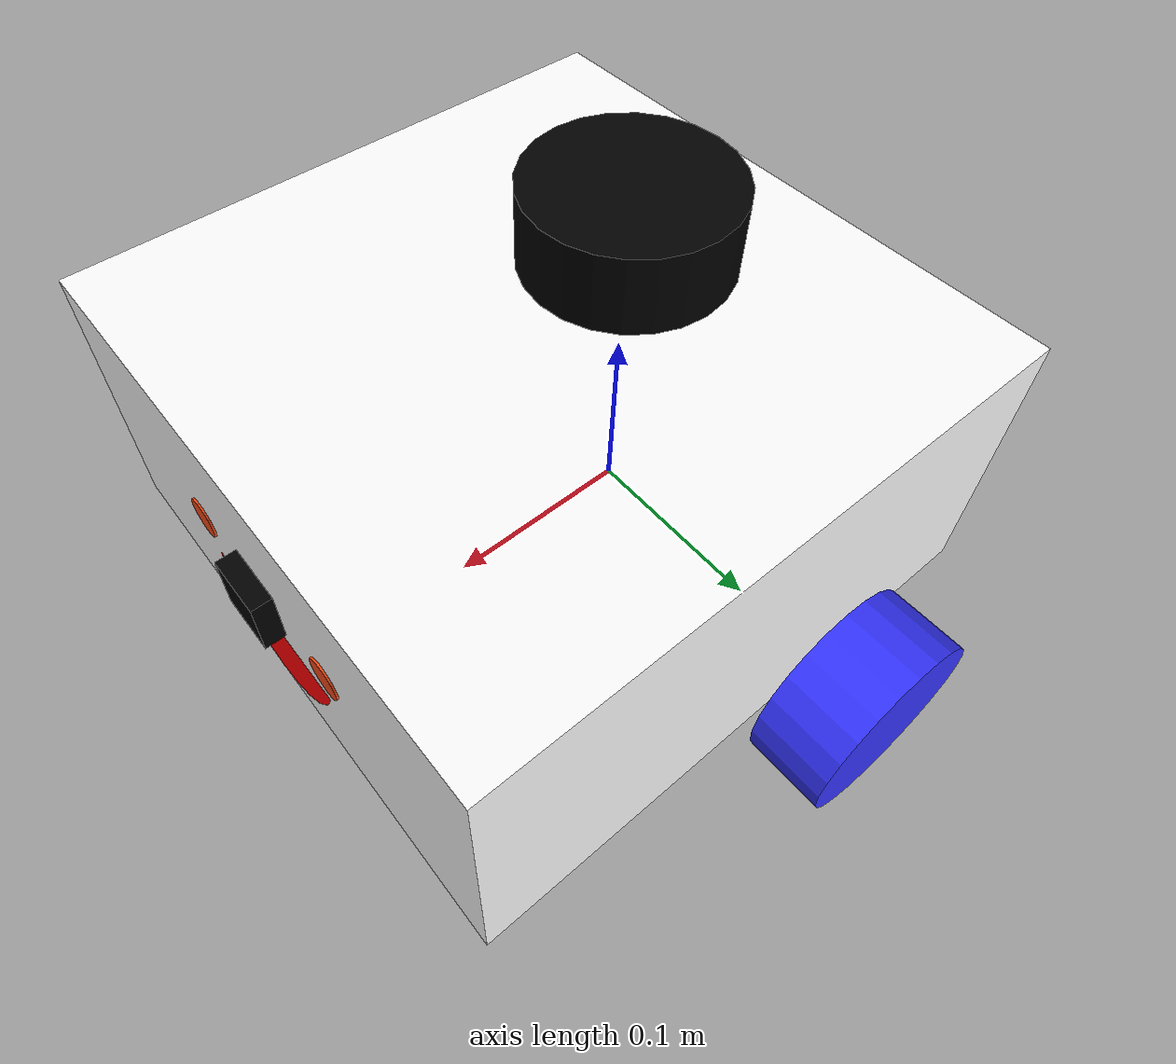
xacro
<?xml version="1.0"?>
<robot xmlns:xacro="http://www.ros.org/wiki/xacro"  name="robot">

    <xacro:arg name="use_ros2_control" default="true"/>

    <xacro:include filename="robot_core.xacro" />

    <xacro:if value="$(arg use_ros2_control)">
        <xacro:include filename="ros2_control.xacro" />
    </xacro:if>
    <xacro:unless value="$(arg use_ros2_control)">
        <xacro:include filename="gazebo_control.xacro" />
    </xacro:unless>
    <xacro:include filename="lidar.xacro" />
    <xacro:include filename="camera.xacro" />

    <xacro:include filename="face.xacro" />

</robot>

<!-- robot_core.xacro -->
<robot xmlns:xacro="http://www.ros.org/wiki/xacro">

    <xacro:include filename="inertial_macros.xacro"/>

    <material name="white">
        <color rgba="1 1 1 1" />
    </material>

    <material name="orange">
        <color rgba="1 0.3 0.1 1"/>
    </material>

    <material name="blue">
        <color rgba="0.2 0.2 1 1"/>
    </material>

    <material name="black">
        <color rgba="0 0 0 1"/>
    </material>

    <material name="red">
        <color rgba="1 0 0 1"/>
    </material>

    <!-- BASE LINK -->

    <link name="base_link">

    </link>

    <!-- toa do start -->
    <link name="base_footprint">
    </link>

    <joint name="base_footprint_joint" type="fixed">
        <parent link="base_link"/>
        <child link="base_footprint"/>
        <origin xyz="0 0 0" rpy="0 0 0"/>

    </joint>

    <!-- khung xe-->
    <link name="chassis">
        <visual>
            <origin xyz="0.15 0 0.075"/>
            <geometry>
                <box size="0.3 0.3 0.15"/>
            </geometry>
            <material name="white"/>
        </visual>

        <collision>
            <origin xyz="0.15 0 0.075"/>
            <geometry>
                <box size="0.3 0.3 0.15"/>
            </geometry>
            <material name="white"/>
        </collision>

        <xacro:inertial_box mass="0.5" x="0.3" y="0.3" z="0.15">
            <origin xyz="0.15 0 0.075" rpy="0.0 0.0 0.0"/>
        </xacro:inertial_box>
    </link>

    <joint name="chassis_joint" type="fixed">
        <parent link="base_link"/>
        <child link="chassis"/>
        <origin xyz="-0.1 0 0"/>
    </joint>

    <!-- gazebo chassis -->
    <gazebo reference="chassis">
        <material>Gazebo/white</material>
    </gazebo>

    <!-- banh xe trai-->
    <link name="left_wheel">
        <visual>
            <geometry>
                <cylinder radius="0.05" length="0.04"/>
            </geometry>
            <material name="blue"/>
        </visual>

        <collision>
            <geometry>
                <sphere radius="0.05" length="0.04"/>
            </geometry>
            <material name="blue"/>
        </collision>

        <xacro:inertial_cylinder mass="0.1" length="0.04" radius="0.05">
            <origin xyz="0.0 0.0 0.0" rpy="0.0 0.0 0.0" />
        </xacro:inertial_cylinder>

    </link>

    <joint name="left_wheel_joint" type="continuous">
        <parent link="base_link"/>
        <child link="left_wheel"/>
        <origin xyz="0 0.175 0" rpy="-${pi/2} 0 0 "/>
        <axis xyz="0.0 0.0 1.0"/>
    </joint>

    <!-- Gazebo banh xe trai -->
    <gazebo reference="left_wheel">
        <material>
            Gazebo/Blue
        </material>
    </gazebo>

    <!-- banh xe phai -->
    <link name="right_wheel">
        <visual>
            <geometry>
                <cylinder radius="0.05" length="0.04"/>
            </geometry>
            <material name="blue"/>
        </visual>

        <collision>
            <geometry>
                <sphere radius="0.05" length="0.04"/>
            </geometry>
            <material name="blue"/>
        </collision>

        <xacro:inertial_cylinder mass="0.1" length="0.04" radius="0.05">
            <origin xyz="0.0 0.0 0.0" rpy="0.0 0.0 0.0" />
        </xacro:inertial_cylinder>
    </link>

    <joint name="right_wheel_joint" type="continuous">
        <parent link="base_link"/>
        <child link="right_wheel"/>
        <origin xyz="0 -0.175 0" rpy="${pi/2} 0 0 "/>
        <axis xyz="0.0 0.0 -1.0"/>
    </joint>

    <!-- Gazebo banh xe phai -->
    <gazebo reference="right_wheel">
        <material>
            Gazebo/Blue
        </material>
    </gazebo>

    <!-- banh xe da huong (choi lau nha) -->
    <link name="caster_wheel">
        <visual>
            <geometry>
                <sphere radius="0.05"/>
            </geometry>
            <material name="black"/>
        </visual>

        <collision>
            <geometry>
                <sphere radius="0.05"/>
            </geometry>
            <material name="black"/>
        </collision>

        <xacro:inertial_sphere mass="0.1" radius="0.05">
            <origin xyz="0.0 0.0 0.0" rpy="0.0 0.0 0.0" />
        </xacro:inertial_sphere>

    </link>

    <joint name="caster_wheel_joint" type="fixed">
        <parent link="chassis"/>
        <child link="caster_wheel"/>
        <origin xyz="0.24 0 0"/>
    </joint>

    <!-- Gazebo banh xe da huong -->
    <gazebo reference="caster_wheel">
        <material>Gazebo/Black</material>
        <mu1 value = "0.001"/>
        <mu2 value = "0.001"/>
    </gazebo>

</robot>

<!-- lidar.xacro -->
<robot xmlns:xacro="http://www.ros.org/wiki/xacro">

    <!-- Khoi noi lidar -->
    <link name="laser_frame">
        <visual>
            <geometry>
                <cylinder radius="0.05" length="0.04"/>
            </geometry>
            <material name="black"/>
        </visual>

        <collision>
            <geometry>
                <cylinder radius="0.05" length="0.04"/>
            </geometry>

            <material name="black"/>
        </collision>

        <xacro:inertial_cylinder mass="0.1" length="0.04" radius="0.05">
            <origin xyz="0.0 0.0 0.0" rpy="0.0 0.0 0.0" />
        </xacro:inertial_cylinder>

    </link>

    <joint name="laser_joint" type="fixed">
        <parent link="chassis"/>
        <child link="laser_frame"/>
        <origin xyz="0.1 0.0 0.175" rpy="0.0 0.0 0.0"/>
    </joint>

    <!-- Hien thuc tren Gazebo -->

    <gazebo reference ="laser_frame">
        <material>Gazebo/Black</material>

        <sensor name="laser" type="ray">
            <pose>0 0 0 0 0 0</pose>
            <visualize>true</visualize>
            <update_rate>15</update_rate>
            <ray>
                <scan>
                    <!-- quet theo chieu ngag tu -180 den 180 -->
                    <horizontal>
                        <samples>360</samples>
                        <resolution>1</resolution>
                        <min_angle>-3.14</min_angle>
                        <max_angle>3.14</max_angle>

                    </horizontal>
                </scan>
                <!-- pham vi quet min = 3m, max= 12m -->
                <range>
                    <min>0.3</min>
                    <max>12</max>
                    <resolution>0.01</resolution>

                </range>
            </ray>
            <plugin name="laser_controller" filename="libgazebo_ros_ray_sensor.so">
                <ros>
                    <argument>~/out:=scan</argument>
                </ros>
                <output_type>sensor_msgs/LaserScan</output_type>
                <frame_name>laser_frame</frame_name>
            </plugin>
        </sensor>
    </gazebo>

</robot>

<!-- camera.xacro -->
<robot xmlns:xacro="http://www.ros.org/wiki/xacro">

    <!-- Khop noi camera -->
    <link name="camera_link">
        <visual>
            <geometry>
                <box size ="0.01 0.03 0.03"/>
            </geometry>
            <material name="black"/>
        </visual>

        <xacro:inertial_cylinder mass="0.1" length="0.04" radius="0.05">
            <origin xyz="0.0 0.0 0.0" rpy="0.0 0.0 0.0" />
        </xacro:inertial_cylinder>

    </link>

    <joint name="camera_joint" type="fixed">
        <parent link="chassis"/>
        <child link="camera_link"/>
        <origin xyz="0.305 0.0 0.08" rpy="0.0 0.0 0.0"/>
    </joint>

    <!-- lien ket quang hoc -->

    <link name="camera_link_optical"></link>

    <joint name="camera_optical_joint" type="fixed">
        <parent link="camera_link"/>
        <child link="camera_link_optical"/>
        <origin xyz="0 0 0" rpy="${-pi/2} 0 ${pi/2}"/>
    </joint>

    <!-- Hien thuc tren Gazebo -->

    <gazebo reference ="camera_link">
        <material>Gazebo/Black</material>

         <sensor name="camera" type="camera">
            <pose>0 0 0 0 0 0</pose>
            <visualize>true</visualize>
            <update_rate>10</update_rate>
            <camera>
                <horizontal_fov>1.089</horizontal_fov>
                <image>
                    <format>R8G8B8</format>
                    <width>640</width>
                    <height>480</height>
                </image>
                <clip>
                    <near>0.05</near>
                    <far>8.0</far>
                </clip>
            </camera>
            <plugin name="camera_controller" filename="libgazebo_ros_camera.so">
                <frame_name>camera_link_optical</frame_name>
            </plugin>
        </sensor>
    </gazebo>

</robot>

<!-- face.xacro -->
<robot xmlns:xacro="http://www.ros.org/wiki/xacro">

    <joint name="face_joint" type="fixed">
        <parent link="chassis"/>
        <child link="face_link"/>
        <origin xyz="0.3 0 0.070" rpy="0 0 0"/>
    </joint>

    <link name="face_link">
        <visual>
            <origin xyz="0 0.05 0.01" rpy="0 ${pi/2} 0"/>
            <geometry>
                <cylinder radius="0.01" length="0.002"/>
            </geometry>
            <material name="orange"/>
        </visual>

        <visual>
            <origin xyz="0 -0.05 0.01" rpy="0 ${pi/2} 0"/>
            <geometry>
                <cylinder radius="0.01" length="0.002"/>
            </geometry>
            <material name="orange"/>
        </visual>

        <visual>
            <origin xyz="-0.011 0 -0.00" rpy="0 ${1.5} 0"/>
            <geometry>
                <cylinder radius="0.05" length="0.02"/>
            </geometry>
            <material name="red"/>
        </visual>
    </link>

    <gazebo reference="face_link">
        <material>Gazebo/Black</material>
    </gazebo>

</robot>
